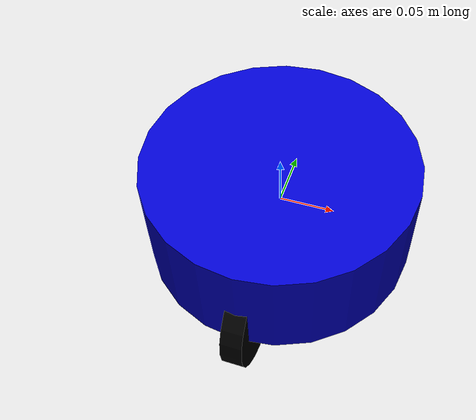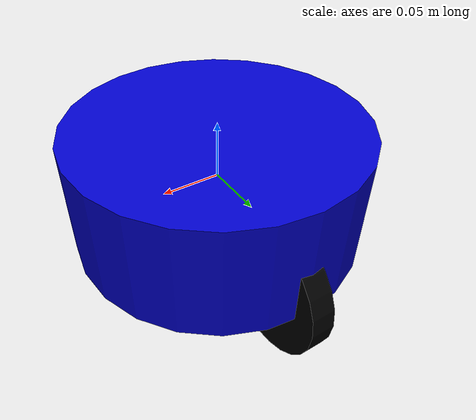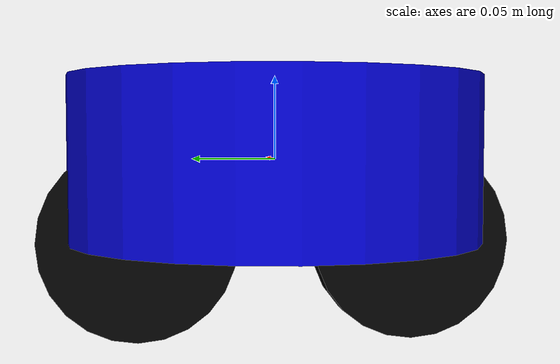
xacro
<?xml version="1.0"?>
<robot xmlns:xacro="http://www.ros.org/wiki/xacro"  name="robot">

    <xacro:include filename="robot_core.xacro" />

</robot>

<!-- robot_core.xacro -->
<robot name="mobile_robot">

  <material name="blue">
    <color rgba="0 0 0.8 1"/>
  </material>
  <material name="gray">
    <color rgba="0.5 0.5 0.5 1"/>
  </material>
  <material name="black">
    <color rgba="0 0 0 1"/>
  </material>

  <link name="base_link">
    <visual>
      <geometry>
        <cylinder radius="0.125" length="0.1"/> </geometry>
      <material name="blue"/>
    </visual>
    <collision>
      <geometry>
        <cylinder radius="0.125" length="0.1"/> </geometry>
    </collision>
    <inertial>
      <mass value="1.0"/> <inertia ixx="0.01041666666" iyy="0.01041666666" izz="0.02083333333" ixy="0" ixz="0" iyz="0"/>
      </inertial>
  </link>

  <link name="left_wheel_link">
    <visual>
      <geometry>
        <cylinder radius="0.06" length="0.02"/> </geometry>
      <material name="black"/>
    </visual>
    <collision>
      <geometry>
        <cylinder radius="0.06" length="0.02"/> </geometry>
    </collision>
    <inertial>
      <mass value="0.1"/> <inertia ixx="0.00013" iyy="0.00013" izz="0.00018" ixy="0" ixz="0" iyz="0"/>
      </inertial>
  </link>

  <link name="right_wheel_link">
    <visual>
      <geometry>
        <cylinder radius="0.06" length="0.02"/> </geometry>
      <material name="black"/>
    </visual>
    <collision>
      <geometry>
        <cylinder radius="0.06" length="0.02"/> </geometry>
    </collision>
    <inertial>
      <mass value="0.1"/> <inertia ixx="0.00013" iyy="0.00013" izz="0.00018" ixy="0" ixz="0" iyz="0"/>
      </inertial>
  </link>

  <joint name="left_wheel_joint" type="continuous">
    <parent link="base_link"/>
    <child link="left_wheel_link"/>
    <origin xyz="0 ${0.1665/2} -0.05" rpy="0 1.5707 0"/>
    <axis xyz="0 1 0"/>
  </joint>

  <joint name="right_wheel_joint" type="continuous">
    <parent link="base_link"/>
    <child link="right_wheel_link"/>
    <origin xyz="0 ${-0.1665/2} -0.05" rpy="0 1.5707 0"/>
    <axis xyz="0 1 0"/>
  </joint>

</robot>
